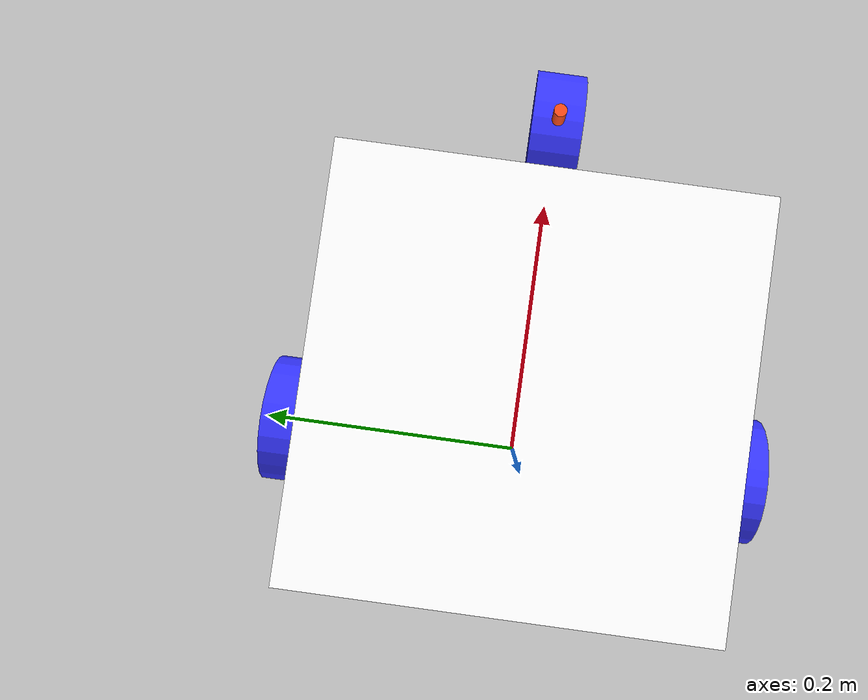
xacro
<?xml version="1.0"?>
<robot xmlns:xacro="http://www.ros.org/wiki/xacro">

    <xacro:include filename="inertial_macros.xacro"/>

    <material name ="white">
        <color rgba="1 1 1 1"/>
    </material>

    <material name ="orange">
        <color rgba="1 0.3 0.1 1"/>
    </material>

    <material name ="blue">
        <color rgba="0.2 0.2 1 1"/>
    </material>

    <material name ="black">
        <color rgba="0 0 0 1"/>
    </material>

    <!-- BASE LINK -->

    <link name="base_link">
    </link>

    <!-- CHASSIS LINK -->

    <joint name="chassis_joint" type="fixed">
        <parent link="base_link"/>
        <child link="chassis"/>
        <origin xyz="-0.1 0 0"/>
    </joint>

    <link name="chassis">
        <visual>
            <origin xyz="0.15 0 0.075"/>
            <geometry>
                <box size="0.3 0.3 0.15"/>
            </geometry>
            <material name="white"/>
        </visual>
        <collision>
            <origin xyz="0.15 0 0.075"/>
            <geometry>
                <box size="0.3 0.3 0.15"/>
            </geometry>
            <material name="white"/>
        </collision>
        <xacro:inertial_box mass="0.5"   x="0.3" y="0.3" z="0.15">
            <origin xyz="0.15 0 0.075"/>
        </xacro:inertial_box>
    </link>

    <!-- LEFT WHEEL -->

    <joint name="left_wheel_joint" type="continuous">
        <parent link="base_link"/>
        <child link="left_wheel"/>
        <origin xyz="0 0.175 0" rpy="-${pi/2} 0 0"/>
        <axis xyz="0 0 1"/>
    </joint>

    <link name="left_wheel">
        <visual>
            <geometry>
                <cylinder length="0.04" radius="0.05" />
            </geometry>
            <material name="blue"/>
        </visual>
        <collision>
            <geometry>
                <cylinder length="0.04" radius="0.05" />
            </geometry>
            <material name="blue"/>
        </collision>
        <xacro:inertial_cylinder mass="0.1" length="0.04" radius="0.05">
            <origin xyz="0 0 0" rpy="0 0 0"/>
        </xacro:inertial_cylinder>
    </link>

    <!-- RIGHT WHEEL -->

    <joint name="right_wheel_joint" type="continuous">
        <parent link="base_link"/>
        <child link="right_wheel"/>
        <origin xyz="0 -0.175 0" rpy="${pi/2} 0 0"/>
        <axis xyz="0 0 -1"/>
    </joint>

    <link name="right_wheel">
        <visual>
            <geometry>
                <cylinder length="0.04" radius="0.05" />/>
            </geometry>
            <material name="blue"/>
        </visual>
        <collision>
            <geometry>
                <cylinder length="0.04" radius="0.05" />/>
            </geometry>
            <material name="blue"/>
        </collision>
        <xacro:inertial_cylinder mass="0.1" length="0.04" radius="0.05">
            <origin xyz="0 0 0" rpy="0 0 0"/>
        </xacro:inertial_cylinder>
    </link>

    <!-- CASTER WHEEL SWIVER PLATE-->

    <joint name="caster_wheel_swiver_plate_joint" type="continuous">
        <parent link="chassis"/>
        <child link="caster_wheel_swiver_plate"/>
        <origin xyz="0.36 0 0.025" rpy="0 0 0"/>
        <axis xyz="0 0 1"/>
    </joint>

    <link name="caster_wheel_swiver_plate">
        <visual>
            <geometry>
                <cylinder length="0.1" radius="0.005" />
            </geometry>
            <material name="orange"/>
        </visual>
        <collision>
            <geometry>
                <cylinder length="0.1" radius="0.005" />
            </geometry>
            <material name="orange"/>
        </collision>
        <xacro:inertial_cylinder mass="0.05" length="0.1" radius="0.005">
            <origin xyz="0 0 0" rpy="0 0 0"/>
        </xacro:inertial_cylinder>
    </link>

<!-- CASTER WHEEL-->

    <joint name="caster_wheel_joint" type="continuous">
        <parent link="caster_wheel_swiver_plate"/>
        <child link="caster_wheel"/>
        <origin xyz="0 0 -0.025" rpy="${pi/2} 0 0"/>
        <axis xyz="0 0 -1"/>
    </joint>

    <link name="caster_wheel">
        <visual>
            <geometry>
                <cylinder length="0.04" radius="0.05" />
            </geometry>
            <material name="blue"/>
        </visual>
        <collision>
            <geometry>
                <cylinder length="0.04" radius="0.05" />
            </geometry>
            <material name="blue"/>
        </collision>
        <xacro:inertial_cylinder mass="0.1" length="0.04" radius="0.05">
            <origin xyz="0 0 0" rpy="0 0 0"/>
        </xacro:inertial_cylinder>
    </link>
</robot>
